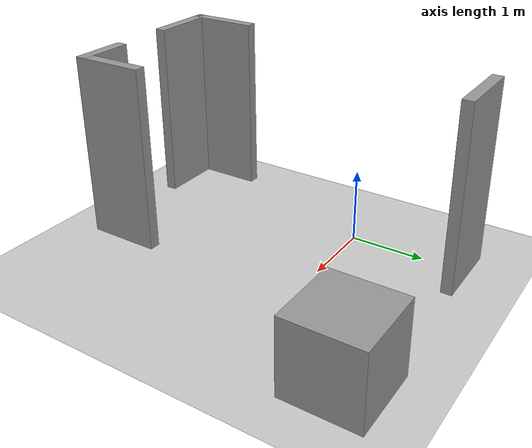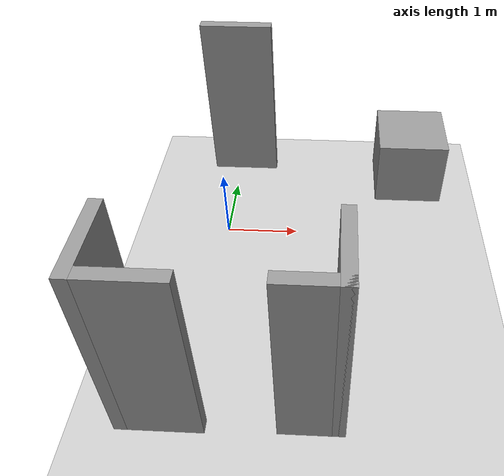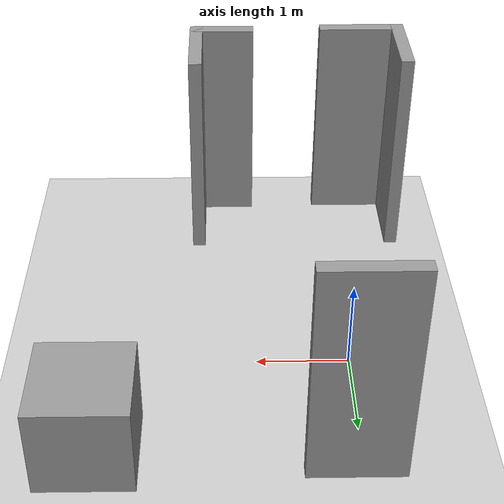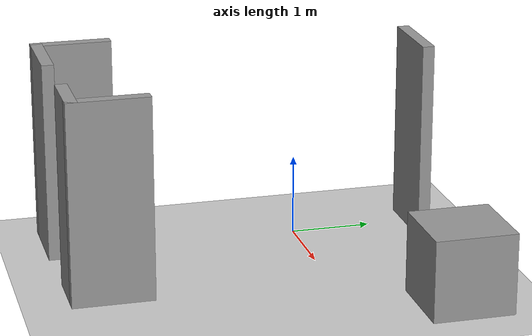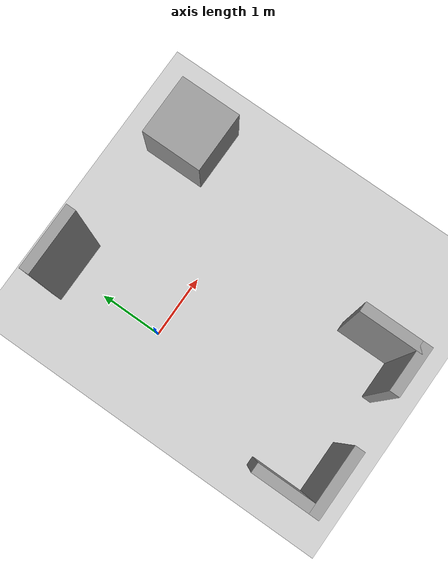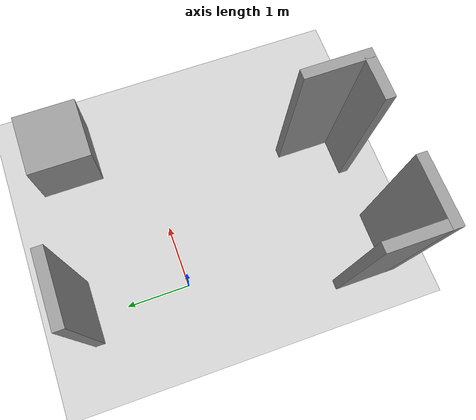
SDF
<sdf version="1.7">
 <world name="default">
  <light name="sun" type="directional">
   <pose>0 0 10 0 -0 0</pose>
   <diffuse>0.8 0.8 0.8 1</diffuse>
   <specular>0.2 0.2 0.2 1</specular>
   <attenuation>
    <range>1000</range>
    <constant>0.9</constant>
    <linear>0.01</linear>
    <quadratic>0.001</quadratic>
   </attenuation>
   <direction>-0.5 0.1 -0.9</direction>
   <spot><inner_angle>0</inner_angle><outer_angle>0</outer_angle><falloff>0</falloff></spot>
  </light>
  <model name="ground_plane">
   <static>1</static>
   <link name="link">
    <collision name="collision">
     <geometry><plane><normal>0 0 1</normal><size>100 100</size></plane></geometry>
     <surface>
      <contact><collide_bitmask>65535</collide_bitmask></contact>
      <friction><ode><mu>100</mu><mu2>50</mu2></ode></friction>
     </surface>
    </collision>
    <visual name="visual">
     <cast_shadows>0</cast_shadows>
     <geometry><plane><normal>0 0 1</normal><size>100 100</size></plane></geometry>
     <material>
      <script><uri>file://media/materials/scripts/gazebo.material</uri><name>Gazebo/Grey</name></script>
     </material>
    </visual>
   </link>
  </model>
  <gravity>0 0 -9.8</gravity>
  <magnetic_field>6e-06 2.3e-05 -4.2e-05</magnetic_field>
  <atmosphere type="adiabatic"/>
  <physics type="ode">
   <max_step_size>0.005</max_step_size>
   <real_time_factor>1</real_time_factor>
   <real_time_update_rate>200</real_time_update_rate>
  </physics>
  <scene><ambient>0.4 0.4 0.4 1</ambient><background>0.7 0.7 0.7 1</background><shadows>1</shadows></scene>
  <audio><device>default</device></audio>
  <spherical_coordinates>
   <surface_model>EARTH_WGS84</surface_model>
   <latitude_deg>0</latitude_deg>
   <longitude_deg>0</longitude_deg>
   <elevation>0</elevation>
   <heading_deg>0</heading_deg>
  </spherical_coordinates>
  <model name="Untitled">
   <pose>0.457942 -0.768715 0 0 -0 0</pose>
   <link name="Wall_0">
    <collision name="Wall_0_Collision">
     <geometry><box><size>1 0.15 2.5</size></box></geometry>
     <pose>0 0 1.25 0 -0 0</pose>
    </collision>
    <visual name="Wall_0_Visual">
     <pose>0 0 1.25 0 -0 0</pose>
     <geometry><box><size>1 0.15 2.5</size></box></geometry>
     <material>
      <script><uri>file://media/materials/scripts/gazebo.material</uri><name>Gazebo/Grey</name></script>
      <ambient>1 1 1 1</ambient>
     </material>
     <meta><layer>0</layer></meta>
    </visual>
    <pose>-0.77 -2.33 0 0 -0 3.14159</pose>
   </link>
   <link name="Wall_1">
    <collision name="Wall_1_Collision">
     <geometry><box><size>1 0.15 2.5</size></box></geometry>
     <pose>0 0 1.25 0 -0 0</pose>
    </collision>
    <visual name="Wall_1_Visual">
     <pose>0 0 1.25 0 -0 0</pose>
     <geometry><box><size>1 0.15 2.5</size></box></geometry>
     <material>
      <script><uri>file://media/materials/scripts/gazebo.material</uri><name>Gazebo/Grey</name></script>
      <ambient>1 1 1 1</ambient>
     </material>
     <meta><layer>0</layer></meta>
    </visual>
    <pose>-1.195 -1.905 0 0 -0 1.5708</pose>
   </link>
   <link name="Wall_3">
    <collision name="Wall_3_Collision">
     <geometry><box><size>0.75 0.15 2.5</size></box></geometry>
     <pose>0 0 1.25 0 -0 0</pose>
    </collision>
    <visual name="Wall_3_Visual">
     <pose>0 0 1.25 0 -0 0</pose>
     <geometry><box><size>0.75 0.15 2.5</size></box></geometry>
     <material>
      <script><uri>file://media/materials/scripts/gazebo.material</uri><name>Gazebo/Grey</name></script>
      <ambient>1 1 1 1</ambient>
     </material>
     <meta><layer>0</layer></meta>
    </visual>
    <pose>0.895 -2.3 0 0 -0 0</pose>
   </link>
   <link name="Wall_4">
    <collision name="Wall_4_Collision">
     <geometry><box><size>1 0.15 2.5</size></box></geometry>
     <pose>0 0 1.25 0 -0 0</pose>
    </collision>
    <visual name="Wall_4_Visual">
     <pose>0 0 1.25 0 -0 0</pose>
     <geometry><box><size>1 0.15 2.5</size></box></geometry>
     <material>
      <script><uri>file://media/materials/scripts/gazebo.material</uri><name>Gazebo/Grey</name></script>
      <ambient>1 1 1 1</ambient>
     </material>
     <meta><layer>0</layer></meta>
    </visual>
    <pose>1.195 -1.875 0 0 -0 1.5708</pose>
   </link>
   <link name="Wall_8">
    <collision name="Wall_8_Collision">
     <geometry><box><size>1 0.15 2.5</size></box></geometry>
     <pose>0 0 1.25 0 -0 0</pose>
    </collision>
    <visual name="Wall_8_Visual">
     <pose>0 0 1.25 0 -0 0</pose>
     <geometry><box><size>1 0.15 2.5</size></box></geometry>
     <material>
      <script><uri>file://media/materials/scripts/gazebo.material</uri><name>Gazebo/Grey</name></script>
      <ambient>1 1 1 1</ambient>
     </material>
     <meta><layer>0</layer></meta>
    </visual>
    <pose>-0.38 2.33 0 0 -0 3.14159</pose>
   </link>
   <static>1</static>
  </model>
  <model name="unit_box">
   <pose>2.68702 1.27849 0.5 0 -0 0</pose>
   <link name="link">
    <inertial>
     <mass>1</mass>
     <inertia>
      <ixx>0.166667</ixx>
      <ixy>0</ixy>
      <ixz>0</ixz>
      <iyy>0.166667</iyy>
      <iyz>0</iyz>
      <izz>0.166667</izz>
     </inertia>
    </inertial>
    <collision name="collision"><geometry><box><size>1 1 1</size></box></geometry></collision>
    <visual name="visual">
     <geometry><box><size>1 1 1</size></box></geometry>
     <material>
      <script><name>Gazebo/Grey</name><uri>file://media/materials/scripts/gazebo.material</uri></script>
     </material>
    </visual>
   </link>
  </model>
  <light name="user_spot_light_0" type="spot">
   <pose>-0.023118 0.052927 1 0 -0 0</pose>
   <diffuse>0.5 0.5 0.5 1</diffuse>
   <specular>0.1 0.1 0.1 1</specular>
   <direction>0 0 -1</direction>
   <attenuation>
    <range>20</range>
    <constant>0.5</constant>
    <linear>0.01</linear>
    <quadratic>0.001</quadratic>
   </attenuation>
   <cast_shadows>0</cast_shadows>
   <spot><inner_angle>0.6</inner_angle><outer_angle>1</outer_angle><falloff>1</falloff></spot>
  </light>
 </world>
</sdf>
